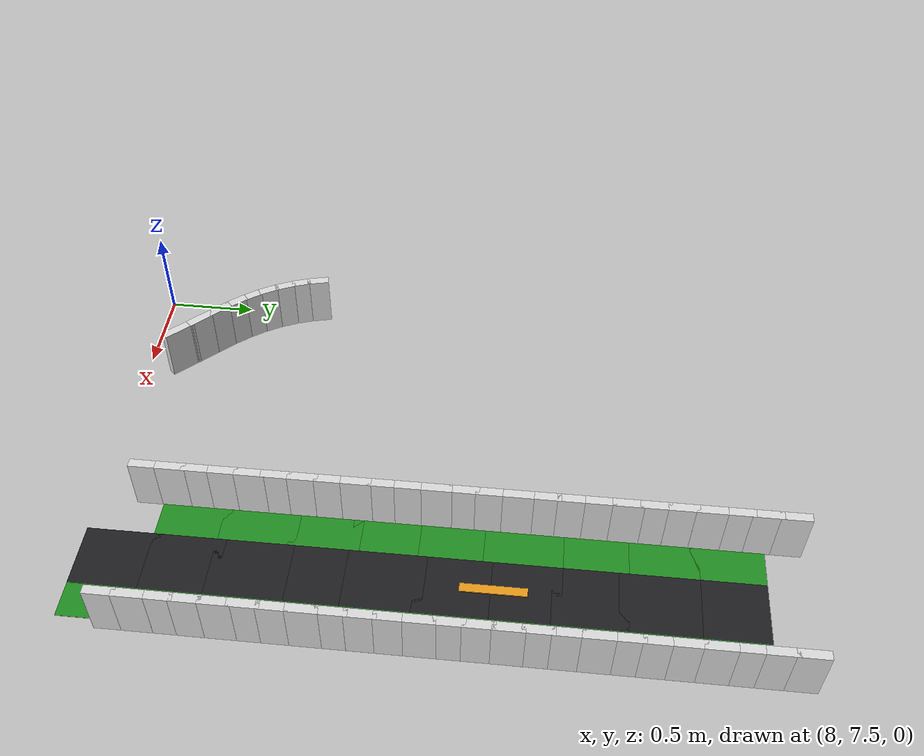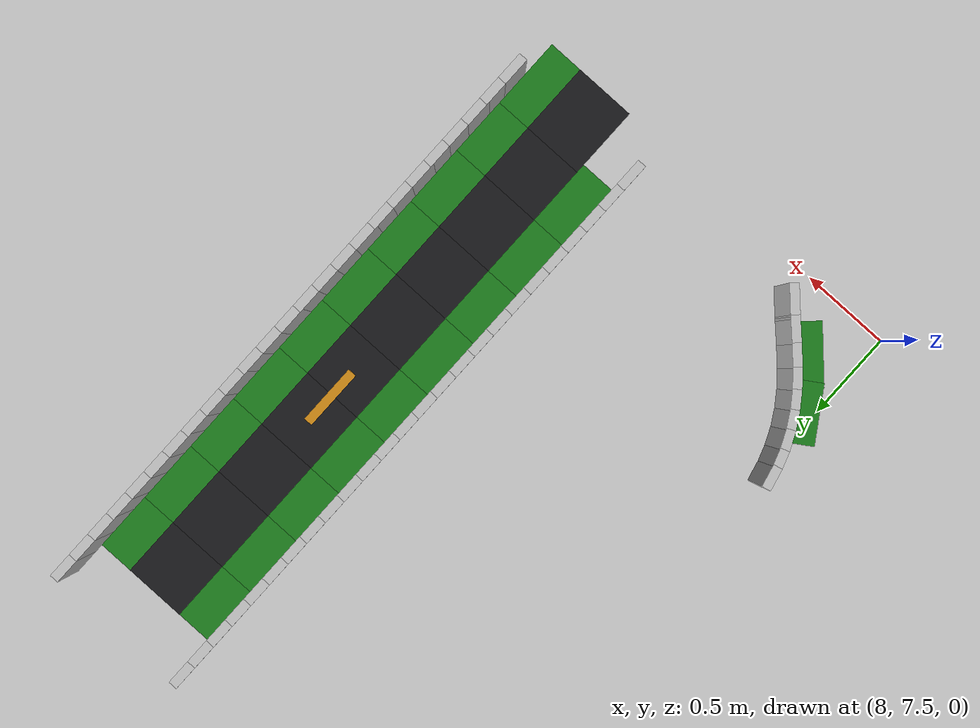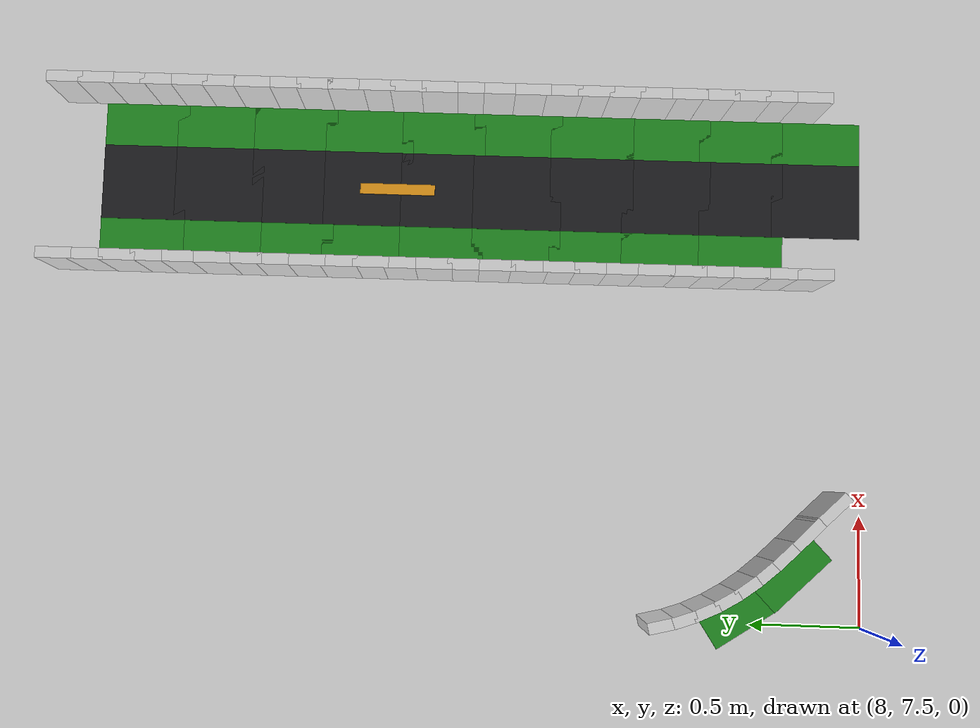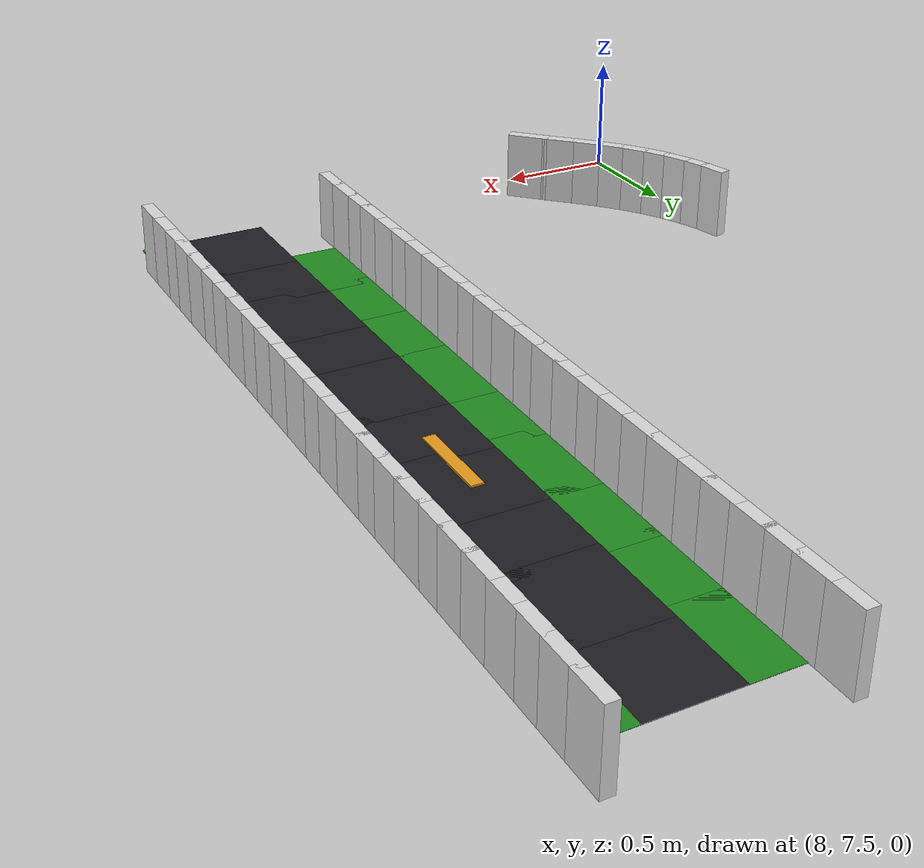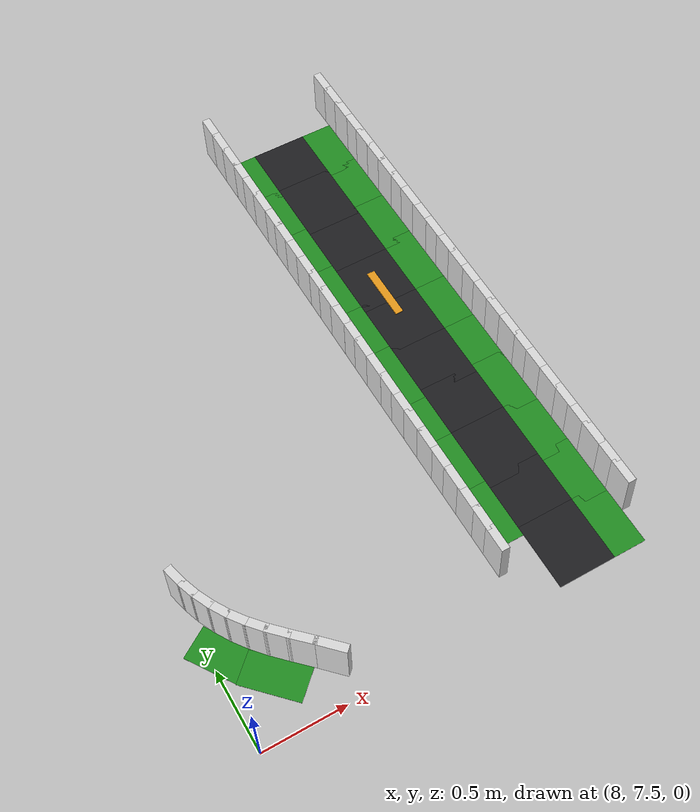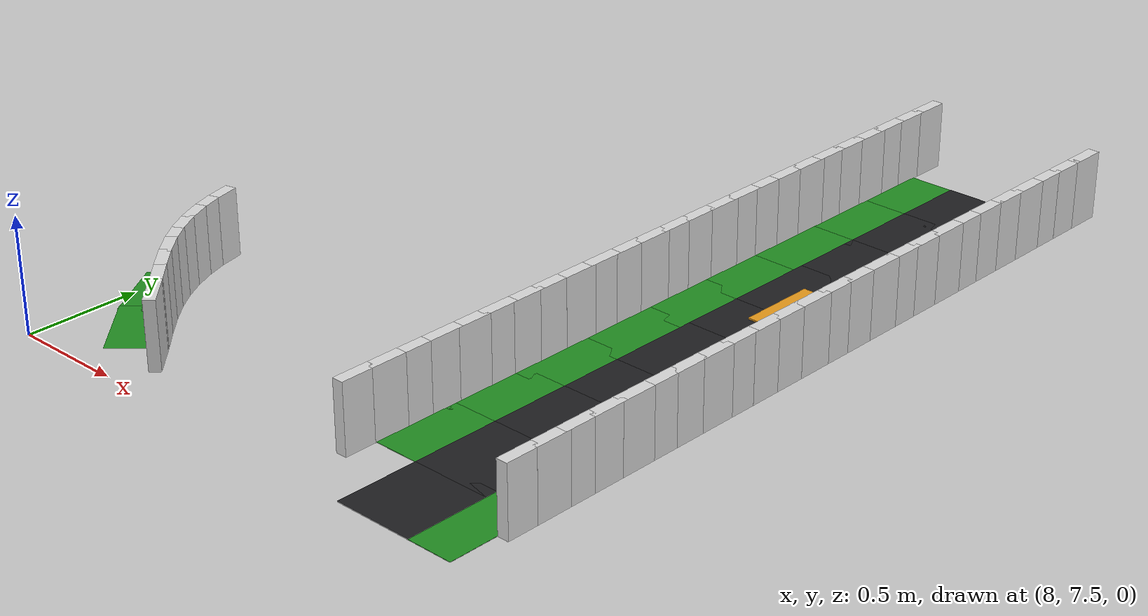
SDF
<sdf version="1.8">
 <world name="it_arena_track">
  <model name="it_arena_track_static">
   <static>true</static>
   <link name="surface_main_3">
    <pose>9.9622 7.7064 0.0015 0 0 1.57396</pose>
    <collision name="surface_main_3_col">
     <geometry><box><size>0.4140 0.3500 0.0030</size></box></geometry>
    </collision>
    <visual name="surface_main_3_vis">
     <geometry><box><size>0.4140 0.3500 0.0030</size></box></geometry>
     <material><ambient>0.12 0.12 0.13 1</ambient><diffuse>0.12 0.12 0.13 1</diffuse></material>
    </visual>
   </link>
   <link name="surface_main_4">
    <pose>9.9611 8.0563 0.0015 0 0 1.57386</pose>
    <collision name="surface_main_4_col">
     <geometry><box><size>0.3910 0.3500 0.0030</size></box></geometry>
    </collision>
    <visual name="surface_main_4_vis">
     <geometry><box><size>0.3910 0.3500 0.0030</size></box></geometry>
     <material><ambient>0.12 0.12 0.13 1</ambient><diffuse>0.12 0.12 0.13 1</diffuse></material>
    </visual>
   </link>
   <link name="surface_main_5">
    <pose>9.9600 8.4063 0.0015 0 0 1.57391</pose>
    <collision name="surface_main_5_col">
     <geometry><box><size>0.4140 0.3500 0.0030</size></box></geometry>
    </collision>
    <visual name="surface_main_5_vis">
     <geometry><box><size>0.4140 0.3500 0.0030</size></box></geometry>
     <material><ambient>0.12 0.12 0.13 1</ambient><diffuse>0.12 0.12 0.13 1</diffuse></material>
    </visual>
   </link>
   <link name="surface_main_6">
    <pose>9.9590 8.7562 0.0015 0 0 1.57374</pose>
    <collision name="surface_main_6_col">
     <geometry><box><size>0.3910 0.3500 0.0030</size></box></geometry>
    </collision>
    <visual name="surface_main_6_vis">
     <geometry><box><size>0.3910 0.3500 0.0030</size></box></geometry>
     <material><ambient>0.12 0.12 0.13 1</ambient><diffuse>0.12 0.12 0.13 1</diffuse></material>
    </visual>
   </link>
   <link name="surface_main_7">
    <pose>9.9579 9.1062 0.0015 0 0 1.57396</pose>
    <collision name="surface_main_7_col">
     <geometry><box><size>0.4140 0.3500 0.0030</size></box></geometry>
    </collision>
    <visual name="surface_main_7_vis">
     <geometry><box><size>0.4140 0.3500 0.0030</size></box></geometry>
     <material><ambient>0.12 0.12 0.13 1</ambient><diffuse>0.12 0.12 0.13 1</diffuse></material>
    </visual>
   </link>
   <link name="surface_main_8">
    <pose>9.9568 9.4562 0.0015 0 0 1.57391</pose>
    <collision name="surface_main_8_col">
     <geometry><box><size>0.3910 0.3500 0.0030</size></box></geometry>
    </collision>
    <visual name="surface_main_8_vis">
     <geometry><box><size>0.3910 0.3500 0.0030</size></box></geometry>
     <material><ambient>0.12 0.12 0.13 1</ambient><diffuse>0.12 0.12 0.13 1</diffuse></material>
    </visual>
   </link>
   <link name="surface_main_9">
    <pose>9.9557 9.8061 0.0015 0 0 1.57385</pose>
    <collision name="surface_main_9_col">
     <geometry><box><size>0.4140 0.3500 0.0030</size></box></geometry>
    </collision>
    <visual name="surface_main_9_vis">
     <geometry><box><size>0.4140 0.3500 0.0030</size></box></geometry>
     <material><ambient>0.12 0.12 0.13 1</ambient><diffuse>0.12 0.12 0.13 1</diffuse></material>
    </visual>
   </link>
   <link name="surface_main_10">
    <pose>9.9546 10.1561 0.0015 0 0 1.57397</pose>
    <collision name="surface_main_10_col">
     <geometry><box><size>0.3910 0.3500 0.0030</size></box></geometry>
    </collision>
    <visual name="surface_main_10_vis">
     <geometry><box><size>0.3910 0.3500 0.0030</size></box></geometry>
     <material><ambient>0.12 0.12 0.13 1</ambient><diffuse>0.12 0.12 0.13 1</diffuse></material>
    </visual>
   </link>
   <link name="surface_main_11">
    <pose>9.9536 10.5060 0.0015 0 0 1.57374</pose>
    <collision name="surface_main_11_col">
     <geometry><box><size>0.4140 0.3500 0.0030</size></box></geometry>
    </collision>
    <visual name="surface_main_11_vis">
     <geometry><box><size>0.4140 0.3500 0.0030</size></box></geometry>
     <material><ambient>0.12 0.12 0.13 1</ambient><diffuse>0.12 0.12 0.13 1</diffuse></material>
    </visual>
   </link>
   <link name="surface_main_12">
    <pose>9.9525 10.8560 0.0015 0 0 1.57391</pose>
    <collision name="surface_main_12_col">
     <geometry><box><size>0.3910 0.3500 0.0030</size></box></geometry>
    </collision>
    <visual name="surface_main_12_vis">
     <geometry><box><size>0.3910 0.3500 0.0030</size></box></geometry>
     <material><ambient>0.12 0.12 0.13 1</ambient><diffuse>0.12 0.12 0.13 1</diffuse></material>
    </visual>
   </link>
   <link name="grass_main_left_4">
    <pose>9.6861 8.0554 0.0010 0 0 1.57386</pose>
    <collision name="grass_main_left_4_col">
     <geometry><box><size>0.3914 0.2000 0.0020</size></box></geometry>
    </collision>
    <visual name="grass_main_left_4_vis">
     <geometry><box><size>0.3914 0.2000 0.0020</size></box></geometry>
     <material><ambient>0.13 0.55 0.13 1</ambient><diffuse>0.13 0.55 0.13 1</diffuse></material>
    </visual>
   </link>
   <link name="grass_main_left_5">
    <pose>9.6850 8.4057 0.0010 0 0 1.57391</pose>
    <collision name="grass_main_left_5_col">
     <geometry><box><size>0.4141 0.2000 0.0020</size></box></geometry>
    </collision>
    <visual name="grass_main_left_5_vis">
     <geometry><box><size>0.4141 0.2000 0.0020</size></box></geometry>
     <material><ambient>0.13 0.55 0.13 1</ambient><diffuse>0.13 0.55 0.13 1</diffuse></material>
    </visual>
   </link>
   <link name="grass_main_left_6">
    <pose>9.6840 8.7555 0.0010 0 0 1.57374</pose>
    <collision name="grass_main_left_6_col">
     <geometry><box><size>0.3905 0.2000 0.0020</size></box></geometry>
    </collision>
    <visual name="grass_main_left_6_vis">
     <geometry><box><size>0.3905 0.2000 0.0020</size></box></geometry>
     <material><ambient>0.13 0.55 0.13 1</ambient><diffuse>0.13 0.55 0.13 1</diffuse></material>
    </visual>
   </link>
   <link name="grass_main_left_7">
    <pose>9.6829 9.1052 0.0010 0 0 1.57396</pose>
    <collision name="grass_main_left_7_col">
     <geometry><box><size>0.4138 0.2000 0.0020</size></box></geometry>
    </collision>
    <visual name="grass_main_left_7_vis">
     <geometry><box><size>0.4138 0.2000 0.0020</size></box></geometry>
     <material><ambient>0.13 0.55 0.13 1</ambient><diffuse>0.13 0.55 0.13 1</diffuse></material>
    </visual>
   </link>
   <link name="grass_main_left_8">
    <pose>9.6818 9.4551 0.0010 0 0 1.57391</pose>
    <collision name="grass_main_left_8_col">
     <geometry><box><size>0.3910 0.2000 0.0020</size></box></geometry>
    </collision>
    <visual name="grass_main_left_8_vis">
     <geometry><box><size>0.3910 0.2000 0.0020</size></box></geometry>
     <material><ambient>0.13 0.55 0.13 1</ambient><diffuse>0.13 0.55 0.13 1</diffuse></material>
    </visual>
   </link>
   <link name="grass_main_left_9">
    <pose>9.6807 9.8053 0.0010 0 0 1.57385</pose>
    <collision name="grass_main_left_9_col">
     <geometry><box><size>0.4146 0.2000 0.0020</size></box></geometry>
    </collision>
    <visual name="grass_main_left_9_vis">
     <geometry><box><size>0.4146 0.2000 0.0020</size></box></geometry>
     <material><ambient>0.13 0.55 0.13 1</ambient><diffuse>0.13 0.55 0.13 1</diffuse></material>
    </visual>
   </link>
   <link name="grass_main_left_10">
    <pose>9.6796 10.1555 0.0010 0 0 1.57397</pose>
    <collision name="grass_main_left_10_col">
     <geometry><box><size>0.3908 0.2000 0.0020</size></box></geometry>
    </collision>
    <visual name="grass_main_left_10_vis">
     <geometry><box><size>0.3908 0.2000 0.0020</size></box></geometry>
     <material><ambient>0.13 0.55 0.13 1</ambient><diffuse>0.13 0.55 0.13 1</diffuse></material>
    </visual>
   </link>
   <link name="grass_main_left_11">
    <pose>9.6786 10.5051 0.0010 0 0 1.57374</pose>
    <collision name="grass_main_left_11_col">
     <geometry><box><size>0.4135 0.2000 0.0020</size></box></geometry>
    </collision>
    <visual name="grass_main_left_11_vis">
     <geometry><box><size>0.4135 0.2000 0.0020</size></box></geometry>
     <material><ambient>0.13 0.55 0.13 1</ambient><diffuse>0.13 0.55 0.13 1</diffuse></material>
    </visual>
   </link>
   <link name="grass_main_left_12">
    <pose>9.6775 10.8550 0.0010 0 0 1.57391</pose>
    <collision name="grass_main_left_12_col">
     <geometry><box><size>0.3911 0.2000 0.0020</size></box></geometry>
    </collision>
    <visual name="grass_main_left_12_vis">
     <geometry><box><size>0.3911 0.2000 0.0020</size></box></geometry>
     <material><ambient>0.13 0.55 0.13 1</ambient><diffuse>0.13 0.55 0.13 1</diffuse></material>
    </visual>
   </link>
   <link name="grass_main_left_39">
    <pose>8.0624 8.0585 0.0010 0 0 -0.99374</pose>
    <collision name="grass_main_left_39_col">
     <geometry><box><size>0.3396 0.2000 0.0020</size></box></geometry>
    </collision>
    <visual name="grass_main_left_39_vis">
     <geometry><box><size>0.3396 0.2000 0.0020</size></box></geometry>
     <material><ambient>0.13 0.55 0.13 1</ambient><diffuse>0.13 0.55 0.13 1</diffuse></material>
    </visual>
   </link>
   <link name="grass_main_left_40">
    <pose>8.2502 7.8223 0.0010 0 0 -0.80899</pose>
    <collision name="grass_main_left_40_col">
     <geometry><box><size>0.3572 0.2000 0.0020</size></box></geometry>
    </collision>
    <visual name="grass_main_left_40_vis">
     <geometry><box><size>0.3572 0.2000 0.0020</size></box></geometry>
     <material><ambient>0.13 0.55 0.13 1</ambient><diffuse>0.13 0.55 0.13 1</diffuse></material>
    </visual>
   </link>
   <link name="grass_main_right_3">
    <pose>10.2372 7.7074 0.0010 0 0 1.57396</pose>
    <collision name="grass_main_right_3_col">
     <geometry><box><size>0.4141 0.2000 0.0020</size></box></geometry>
    </collision>
    <visual name="grass_main_right_3_vis">
     <geometry><box><size>0.4141 0.2000 0.0020</size></box></geometry>
     <material><ambient>0.13 0.55 0.13 1</ambient><diffuse>0.13 0.55 0.13 1</diffuse></material>
    </visual>
   </link>
   <link name="grass_main_right_4">
    <pose>10.2361 8.0572 0.0010 0 0 1.57386</pose>
    <collision name="grass_main_right_4_col">
     <geometry><box><size>0.3905 0.2000 0.0020</size></box></geometry>
    </collision>
    <visual name="grass_main_right_4_vis">
     <geometry><box><size>0.3905 0.2000 0.0020</size></box></geometry>
     <material><ambient>0.13 0.55 0.13 1</ambient><diffuse>0.13 0.55 0.13 1</diffuse></material>
    </visual>
   </link>
   <link name="grass_main_right_5">
    <pose>10.2350 8.4069 0.0010 0 0 1.57391</pose>
    <collision name="grass_main_right_5_col">
     <geometry><box><size>0.4138 0.2000 0.0020</size></box></geometry>
    </collision>
    <visual name="grass_main_right_5_vis">
     <geometry><box><size>0.4138 0.2000 0.0020</size></box></geometry>
     <material><ambient>0.13 0.55 0.13 1</ambient><diffuse>0.13 0.55 0.13 1</diffuse></material>
    </visual>
   </link>
   <link name="grass_main_right_6">
    <pose>10.2340 8.7570 0.0010 0 0 1.57374</pose>
    <collision name="grass_main_right_6_col">
     <geometry><box><size>0.3914 0.2000 0.0020</size></box></geometry>
    </collision>
    <visual name="grass_main_right_6_vis">
     <geometry><box><size>0.3914 0.2000 0.0020</size></box></geometry>
     <material><ambient>0.13 0.55 0.13 1</ambient><diffuse>0.13 0.55 0.13 1</diffuse></material>
    </visual>
   </link>
   <link name="grass_main_right_7">
    <pose>10.2329 9.1072 0.0010 0 0 1.57396</pose>
    <collision name="grass_main_right_7_col">
     <geometry><box><size>0.4141 0.2000 0.0020</size></box></geometry>
    </collision>
    <visual name="grass_main_right_7_vis">
     <geometry><box><size>0.4141 0.2000 0.0020</size></box></geometry>
     <material><ambient>0.13 0.55 0.13 1</ambient><diffuse>0.13 0.55 0.13 1</diffuse></material>
    </visual>
   </link>
   <link name="grass_main_right_8">
    <pose>10.2318 9.4573 0.0010 0 0 1.57391</pose>
    <collision name="grass_main_right_8_col">
     <geometry><box><size>0.3910 0.2000 0.0020</size></box></geometry>
    </collision>
    <visual name="grass_main_right_8_vis">
     <geometry><box><size>0.3910 0.2000 0.0020</size></box></geometry>
     <material><ambient>0.13 0.55 0.13 1</ambient><diffuse>0.13 0.55 0.13 1</diffuse></material>
    </visual>
   </link>
   <link name="grass_main_right_9">
    <pose>10.2307 9.8069 0.0010 0 0 1.57385</pose>
    <collision name="grass_main_right_9_col">
     <geometry><box><size>0.4133 0.2000 0.0020</size></box></geometry>
    </collision>
    <visual name="grass_main_right_9_vis">
     <geometry><box><size>0.4133 0.2000 0.0020</size></box></geometry>
     <material><ambient>0.13 0.55 0.13 1</ambient><diffuse>0.13 0.55 0.13 1</diffuse></material>
    </visual>
   </link>
   <link name="grass_main_right_10">
    <pose>10.2296 10.1567 0.0010 0 0 1.57397</pose>
    <collision name="grass_main_right_10_col">
     <geometry><box><size>0.3911 0.2000 0.0020</size></box></geometry>
    </collision>
    <visual name="grass_main_right_10_vis">
     <geometry><box><size>0.3911 0.2000 0.0020</size></box></geometry>
     <material><ambient>0.13 0.55 0.13 1</ambient><diffuse>0.13 0.55 0.13 1</diffuse></material>
    </visual>
   </link>
   <link name="grass_main_right_11">
    <pose>10.2285 10.5069 0.0010 0 0 1.57374</pose>
    <collision name="grass_main_right_11_col">
     <geometry><box><size>0.4144 0.2000 0.0020</size></box></geometry>
    </collision>
    <visual name="grass_main_right_11_vis">
     <geometry><box><size>0.4144 0.2000 0.0020</size></box></geometry>
     <material><ambient>0.13 0.55 0.13 1</ambient><diffuse>0.13 0.55 0.13 1</diffuse></material>
    </visual>
   </link>
   <link name="grass_main_right_12">
    <pose>10.2275 10.8570 0.0010 0 0 1.57391</pose>
    <collision name="grass_main_right_12_col">
     <geometry><box><size>0.3908 0.2000 0.0020</size></box></geometry>
    </collision>
    <visual name="grass_main_right_12_vis">
     <geometry><box><size>0.3908 0.2000 0.0020</size></box></geometry>
     <material><ambient>0.13 0.55 0.13 1</ambient><diffuse>0.13 0.55 0.13 1</diffuse></material>
    </visual>
   </link>
   <link name="walls_main_left_9">
    <pose>9.5619 7.7951 0.1500 0 0 1.57408</pose>
    <collision name="walls_main_left_9_col">
     <geometry><box><size>0.1612 0.0500 0.3000</size></box></geometry>
     <surface><friction><ode><mu>0.8</mu><mu2>0.8</mu2></ode></friction></surface>
    </collision>
    <visual name="walls_main_left_9_vis">
     <geometry><box><size>0.1612 0.0500 0.3000</size></box></geometry>
     <material><ambient>0.85 0.85 0.85 1</ambient><diffuse>0.85 0.85 0.85 1</diffuse></material>
    </visual>
   </link>
   <link name="walls_main_left_10">
    <pose>9.5615 7.9350 0.1500 0 0 1.57408</pose>
    <collision name="walls_main_left_10_col">
     <geometry><box><size>0.1607 0.0500 0.3000</size></box></geometry>
     <surface><friction><ode><mu>0.8</mu><mu2>0.8</mu2></ode></friction></surface>
    </collision>
    <visual name="walls_main_left_10_vis">
     <geometry><box><size>0.1607 0.0500 0.3000</size></box></geometry>
     <material><ambient>0.85 0.85 0.85 1</ambient><diffuse>0.85 0.85 0.85 1</diffuse></material>
    </visual>
   </link>
   <link name="walls_main_left_11">
    <pose>9.5610 8.0752 0.1500 0 0 1.57366</pose>
    <collision name="walls_main_left_11_col">
     <geometry><box><size>0.1617 0.0500 0.3000</size></box></geometry>
     <surface><friction><ode><mu>0.8</mu><mu2>0.8</mu2></ode></friction></surface>
    </collision>
    <visual name="walls_main_left_11_vis">
     <geometry><box><size>0.1617 0.0500 0.3000</size></box></geometry>
     <material><ambient>0.85 0.85 0.85 1</ambient><diffuse>0.85 0.85 0.85 1</diffuse></material>
    </visual>
   </link>
   <link name="walls_main_left_12">
    <pose>9.5606 8.2151 0.1500 0 0 1.57379</pose>
    <collision name="walls_main_left_12_col">
     <geometry><box><size>0.1601 0.0500 0.3000</size></box></geometry>
     <surface><friction><ode><mu>0.8</mu><mu2>0.8</mu2></ode></friction></surface>
    </collision>
    <visual name="walls_main_left_12_vis">
     <geometry><box><size>0.1601 0.0500 0.3000</size></box></geometry>
     <material><ambient>0.85 0.85 0.85 1</ambient><diffuse>0.85 0.85 0.85 1</diffuse></material>
    </visual>
   </link>
   <link name="walls_main_left_13">
    <pose>9.5602 8.3548 0.1500 0 0 1.57408</pose>
    <collision name="walls_main_left_13_col">
     <geometry><box><size>0.1612 0.0500 0.3000</size></box></geometry>
     <surface><friction><ode><mu>0.8</mu><mu2>0.8</mu2></ode></friction></surface>
    </collision>
    <visual name="walls_main_left_13_vis">
     <geometry><box><size>0.1612 0.0500 0.3000</size></box></geometry>
     <material><ambient>0.85 0.85 0.85 1</ambient><diffuse>0.85 0.85 0.85 1</diffuse></material>
    </visual>
   </link>
   <link name="walls_main_left_14">
    <pose>9.5597 8.4950 0.1500 0 0 1.57408</pose>
    <collision name="walls_main_left_14_col">
     <geometry><box><size>0.1612 0.0500 0.3000</size></box></geometry>
     <surface><friction><ode><mu>0.8</mu><mu2>0.8</mu2></ode></friction></surface>
    </collision>
    <visual name="walls_main_left_14_vis">
     <geometry><box><size>0.1612 0.0500 0.3000</size></box></geometry>
     <material><ambient>0.85 0.85 0.85 1</ambient><diffuse>0.85 0.85 0.85 1</diffuse></material>
    </visual>
   </link>
   <link name="walls_main_left_15">
    <pose>9.5593 8.6352 0.1500 0 0 1.57351</pose>
    <collision name="walls_main_left_15_col">
     <geometry><box><size>0.1612 0.0500 0.3000</size></box></geometry>
     <surface><friction><ode><mu>0.8</mu><mu2>0.8</mu2></ode></friction></surface>
    </collision>
    <visual name="walls_main_left_15_vis">
     <geometry><box><size>0.1612 0.0500 0.3000</size></box></geometry>
     <material><ambient>0.85 0.85 0.85 1</ambient><diffuse>0.85 0.85 0.85 1</diffuse></material>
    </visual>
   </link>
   <link name="walls_main_left_16">
    <pose>9.5589 8.7749 0.1500 0 0 1.57393</pose>
    <collision name="walls_main_left_16_col">
     <geometry><box><size>0.1603 0.0500 0.3000</size></box></geometry>
     <surface><friction><ode><mu>0.8</mu><mu2>0.8</mu2></ode></friction></surface>
    </collision>
    <visual name="walls_main_left_16_vis">
     <geometry><box><size>0.1603 0.0500 0.3000</size></box></geometry>
     <material><ambient>0.85 0.85 0.85 1</ambient><diffuse>0.85 0.85 0.85 1</diffuse></material>
    </visual>
   </link>
   <link name="walls_main_left_17">
    <pose>9.5585 8.9146 0.1500 0 0 1.57408</pose>
    <collision name="walls_main_left_17_col">
     <geometry><box><size>0.1610 0.0500 0.3000</size></box></geometry>
     <surface><friction><ode><mu>0.8</mu><mu2>0.8</mu2></ode></friction></surface>
    </collision>
    <visual name="walls_main_left_17_vis">
     <geometry><box><size>0.1610 0.0500 0.3000</size></box></geometry>
     <material><ambient>0.85 0.85 0.85 1</ambient><diffuse>0.85 0.85 0.85 1</diffuse></material>
    </visual>
   </link>
   <link name="walls_main_left_18">
    <pose>9.5580 9.0549 0.1500 0 0 1.57394</pose>
    <collision name="walls_main_left_18_col">
     <geometry><box><size>0.1617 0.0500 0.3000</size></box></geometry>
     <surface><friction><ode><mu>0.8</mu><mu2>0.8</mu2></ode></friction></surface>
    </collision>
    <visual name="walls_main_left_18_vis">
     <geometry><box><size>0.1617 0.0500 0.3000</size></box></geometry>
     <material><ambient>0.85 0.85 0.85 1</ambient><diffuse>0.85 0.85 0.85 1</diffuse></material>
    </visual>
   </link>
   <link name="walls_main_left_19">
    <pose>9.5576 9.1951 0.1500 0 0 1.57351</pose>
    <collision name="walls_main_left_19_col">
     <geometry><box><size>0.1608 0.0500 0.3000</size></box></geometry>
     <surface><friction><ode><mu>0.8</mu><mu2>0.8</mu2></ode></friction></surface>
    </collision>
    <visual name="walls_main_left_19_vis">
     <geometry><box><size>0.1608 0.0500 0.3000</size></box></geometry>
     <material><ambient>0.85 0.85 0.85 1</ambient><diffuse>0.85 0.85 0.85 1</diffuse></material>
    </visual>
   </link>
   <link name="walls_main_left_20">
    <pose>9.5572 9.3349 0.1500 0 0 1.57408</pose>
    <collision name="walls_main_left_20_col">
     <geometry><box><size>0.1607 0.0500 0.3000</size></box></geometry>
     <surface><friction><ode><mu>0.8</mu><mu2>0.8</mu2></ode></friction></surface>
    </collision>
    <visual name="walls_main_left_20_vis">
     <geometry><box><size>0.1607 0.0500 0.3000</size></box></geometry>
     <material><ambient>0.85 0.85 0.85 1</ambient><diffuse>0.85 0.85 0.85 1</diffuse></material>
    </visual>
   </link>
   <link name="walls_main_left_21">
    <pose>9.5567 9.4751 0.1500 0 0 1.57366</pose>
    <collision name="walls_main_left_21_col">
     <geometry><box><size>0.1617 0.0500 0.3000</size></box></geometry>
     <surface><friction><ode><mu>0.8</mu><mu2>0.8</mu2></ode></friction></surface>
    </collision>
    <visual name="walls_main_left_21_vis">
     <geometry><box><size>0.1617 0.0500 0.3000</size></box></geometry>
     <material><ambient>0.85 0.85 0.85 1</ambient><diffuse>0.85 0.85 0.85 1</diffuse></material>
    </visual>
   </link>
   <link name="walls_main_left_22">
    <pose>9.5563 9.6153 0.1500 0 0 1.57423</pose>
    <collision name="walls_main_left_22_col">
     <geometry><box><size>0.1610 0.0500 0.3000</size></box></geometry>
     <surface><friction><ode><mu>0.8</mu><mu2>0.8</mu2></ode></friction></surface>
    </collision>
    <visual name="walls_main_left_22_vis">
     <geometry><box><size>0.1610 0.0500 0.3000</size></box></geometry>
     <material><ambient>0.85 0.85 0.85 1</ambient><diffuse>0.85 0.85 0.85 1</diffuse></material>
    </visual>
   </link>
   <link name="walls_main_left_23">
    <pose>9.5559 9.7550 0.1500 0 0 1.57365</pose>
    <collision name="walls_main_left_23_col">
     <geometry><box><size>0.1603 0.0500 0.3000</size></box></geometry>
     <surface><friction><ode><mu>0.8</mu><mu2>0.8</mu2></ode></friction></surface>
    </collision>
    <visual name="walls_main_left_23_vis">
     <geometry><box><size>0.1603 0.0500 0.3000</size></box></geometry>
     <material><ambient>0.85 0.85 0.85 1</ambient><diffuse>0.85 0.85 0.85 1</diffuse></material>
    </visual>
   </link>
   <link name="walls_main_left_24">
    <pose>9.5554 9.8948 0.1500 0 0 1.57408</pose>
    <collision name="walls_main_left_24_col">
     <geometry><box><size>0.1612 0.0500 0.3000</size></box></geometry>
     <surface><friction><ode><mu>0.8</mu><mu2>0.8</mu2></ode></friction></surface>
    </collision>
    <visual name="walls_main_left_24_vis">
     <geometry><box><size>0.1612 0.0500 0.3000</size></box></geometry>
     <material><ambient>0.85 0.85 0.85 1</ambient><diffuse>0.85 0.85 0.85 1</diffuse></material>
    </visual>
   </link>
   <link name="walls_main_left_25">
    <pose>9.5550 10.0350 0.1500 0 0 1.57352</pose>
    <collision name="walls_main_left_25_col">
     <geometry><box><size>0.1612 0.0500 0.3000</size></box></geometry>
     <surface><friction><ode><mu>0.8</mu><mu2>0.8</mu2></ode></friction></surface>
    </collision>
    <visual name="walls_main_left_25_vis">
     <geometry><box><size>0.1612 0.0500 0.3000</size></box></geometry>
     <material><ambient>0.85 0.85 0.85 1</ambient><diffuse>0.85 0.85 0.85 1</diffuse></material>
    </visual>
   </link>
   <link name="walls_main_left_26">
    <pose>9.5546 10.1748 0.1500 0 0 1.57393</pose>
    <collision name="walls_main_left_26_col">
     <geometry><box><size>0.1603 0.0500 0.3000</size></box></geometry>
     <surface><friction><ode><mu>0.8</mu><mu2>0.8</mu2></ode></friction></surface>
    </collision>
    <visual name="walls_main_left_26_vis">
     <geometry><box><size>0.1603 0.0500 0.3000</size></box></geometry>
     <material><ambient>0.85 0.85 0.85 1</ambient><diffuse>0.85 0.85 0.85 1</diffuse></material>
    </visual>
   </link>
   <link name="walls_main_left_27">
    <pose>9.5542 10.3145 0.1500 0 0 1.57408</pose>
    <collision name="walls_main_left_27_col">
     <geometry><box><size>0.1610 0.0500 0.3000</size></box></geometry>
     <surface><friction><ode><mu>0.8</mu><mu2>0.8</mu2></ode></friction></surface>
    </collision>
    <visual name="walls_main_left_27_vis">
     <geometry><box><size>0.1610 0.0500 0.3000</size></box></geometry>
     <material><ambient>0.85 0.85 0.85 1</ambient><diffuse>0.85 0.85 0.85 1</diffuse></material>
    </visual>
   </link>
   <link name="walls_main_left_28">
    <pose>9.5537 10.4547 0.1500 0 0 1.57395</pose>
    <collision name="walls_main_left_28_col">
     <geometry><box><size>0.1617 0.0500 0.3000</size></box></geometry>
     <surface><friction><ode><mu>0.8</mu><mu2>0.8</mu2></ode></friction></surface>
    </collision>
    <visual name="walls_main_left_28_vis">
     <geometry><box><size>0.1617 0.0500 0.3000</size></box></geometry>
     <material><ambient>0.85 0.85 0.85 1</ambient><diffuse>0.85 0.85 0.85 1</diffuse></material>
    </visual>
   </link>
   <link name="walls_main_left_29">
    <pose>9.5533 10.5949 0.1500 0 0 1.57351</pose>
    <collision name="walls_main_left_29_col">
     <geometry><box><size>0.1608 0.0500 0.3000</size></box></geometry>
     <surface><friction><ode><mu>0.8</mu><mu2>0.8</mu2></ode></friction></surface>
    </collision>
    <visual name="walls_main_left_29_vis">
     <geometry><box><size>0.1608 0.0500 0.3000</size></box></geometry>
     <material><ambient>0.85 0.85 0.85 1</ambient><diffuse>0.85 0.85 0.85 1</diffuse></material>
    </visual>
   </link>
   <link name="walls_main_left_30">
    <pose>9.5529 10.7347 0.1500 0 0 1.57408</pose>
    <collision name="walls_main_left_30_col">
     <geometry><box><size>0.1607 0.0500 0.3000</size></box></geometry>
     <surface><friction><ode><mu>0.8</mu><mu2>0.8</mu2></ode></friction></surface>
    </collision>
    <visual name="walls_main_left_30_vis">
     <geometry><box><size>0.1607 0.0500 0.3000</size></box></geometry>
     <material><ambient>0.85 0.85 0.85 1</ambient><diffuse>0.85 0.85 0.85 1</diffuse></material>
    </visual>
   </link>
   <link name="walls_main_left_31">
    <pose>9.5524 10.8745 0.1500 0 0 1.57408</pose>
    <collision name="walls_main_left_31_col">
     <geometry><box><size>0.1608 0.0500 0.3000</size></box></geometry>
     <surface><friction><ode><mu>0.8</mu><mu2>0.8</mu2></ode></friction></surface>
    </collision>
    <visual name="walls_main_left_31_vis">
     <geometry><box><size>0.1608 0.0500 0.3000</size></box></geometry>
     <material><ambient>0.85 0.85 0.85 1</ambient><diffuse>0.85 0.85 0.85 1</diffuse></material>
    </visual>
   </link>
   <link name="walls_main_left_32">
    <pose>9.5520 11.0148 0.1500 0 0 1.57380</pose>
    <collision name="walls_main_left_32_col">
     <geometry><box><size>0.1619 0.0500 0.3000</size></box></geometry>
     <surface><friction><ode><mu>0.8</mu><mu2>0.8</mu2></ode></friction></surface>
    </collision>
    <visual name="walls_main_left_32_vis">
     <geometry><box><size>0.1619 0.0500 0.3000</size></box></geometry>
     <material><ambient>0.85 0.85 0.85 1</ambient><diffuse>0.85 0.85 0.85 1</diffuse></material>
    </visual>
   </link>
   <link name="walls_main_left_33">
    <pose>9.5516 11.1549 0.1500 0 0 1.57365</pose>
    <collision name="walls_main_left_33_col">
     <geometry><box><size>0.1603 0.0500 0.3000</size></box></geometry>
     <surface><friction><ode><mu>0.8</mu><mu2>0.8</mu2></ode></friction></surface>
    </collision>
    <visual name="walls_main_left_33_vis">
     <geometry><box><size>0.1603 0.0500 0.3000</size></box></geometry>
     <material><ambient>0.85 0.85 0.85 1</ambient><diffuse>0.85 0.85 0.85 1</diffuse></material>
    </visual>
   </link>
   <link name="walls_main_left_95">
    <pose>8.0208 8.4459 0.1500 0 0 -1.33142</pose>
    <collision name="walls_main_left_95_col">
     <geometry><box><size>0.1251 0.0500 0.3000</size></box></geometry>
     <surface><friction><ode><mu>0.8</mu><mu2>0.8</mu2></ode></friction></surface>
    </collision>
    <visual name="walls_main_left_95_vis">
     <geometry><box><size>0.1251 0.0500 0.3000</size></box></geometry>
     <material><ambient>0.85 0.85 0.85 1</ambient><diffuse>0.85 0.85 0.85 1</diffuse></material>
    </visual>
   </link>
   <link name="walls_main_left_96">
    <pose>8.0491 8.3489 0.1500 0 0 -1.23540</pose>
    <collision name="walls_main_left_96_col">
     <geometry><box><size>0.1075 0.0500 0.3000</size></box></geometry>
     <surface><friction><ode><mu>0.8</mu><mu2>0.8</mu2></ode></friction></surface>
    </collision>
    <visual name="walls_main_left_96_vis">
     <geometry><box><size>0.1075 0.0500 0.3000</size></box></geometry>
     <material><ambient>0.85 0.85 0.85 1</ambient><diffuse>0.85 0.85 0.85 1</diffuse></material>
    </visual>
   </link>
   <link name="walls_main_left_97">
    <pose>8.0864 8.2570 0.1500 0 0 -1.14104</pose>
    <collision name="walls_main_left_97_col">
     <geometry><box><size>0.1209 0.0500 0.3000</size></box></geometry>
     <surface><friction><ode><mu>0.8</mu><mu2>0.8</mu2></ode></friction></surface>
    </collision>
    <visual name="walls_main_left_97_vis">
     <geometry><box><size>0.1209 0.0500 0.3000</size></box></geometry>
     <material><ambient>0.85 0.85 0.85 1</ambient><diffuse>0.85 0.85 0.85 1</diffuse></material>
    </visual>
   </link>
   <link name="walls_main_left_98">
    <pose>8.1340 8.1653 0.1500 0 0 -1.04070</pose>
    <collision name="walls_main_left_98_col">
     <geometry><box><size>0.1172 0.0500 0.3000</size></box></geometry>
     <surface><friction><ode><mu>0.8</mu><mu2>0.8</mu2></ode></friction></surface>
    </collision>
    <visual name="walls_main_left_98_vis">
     <geometry><box><size>0.1172 0.0500 0.3000</size></box></geometry>
     <material><ambient>0.85 0.85 0.85 1</ambient><diffuse>0.85 0.85 0.85 1</diffuse></material>
    </visual>
   </link>
   <link name="walls_main_left_99">
    <pose>8.1900 8.0796 0.1500 0 0 -0.94449</pose>
    <collision name="walls_main_left_99_col">
     <geometry><box><size>0.1184 0.0500 0.3000</size></box></geometry>
     <surface><friction><ode><mu>0.8</mu><mu2>0.8</mu2></ode></friction></surface>
    </collision>
    <visual name="walls_main_left_99_vis">
     <geometry><box><size>0.1184 0.0500 0.3000</size></box></geometry>
     <material><ambient>0.85 0.85 0.85 1</ambient><diffuse>0.85 0.85 0.85 1</diffuse></material>
    </visual>
   </link>
   <link name="walls_main_left_100">
    <pose>8.2564 7.9958 0.1500 0 0 -0.86036</pose>
    <collision name="walls_main_left_100_col">
     <geometry><box><size>0.1278 0.0500 0.3000</size></box></geometry>
     <surface><friction><ode><mu>0.8</mu><mu2>0.8</mu2></ode></friction></surface>
    </collision>
    <visual name="walls_main_left_100_vis">
     <geometry><box><size>0.1278 0.0500 0.3000</size></box></geometry>
     <material><ambient>0.85 0.85 0.85 1</ambient><diffuse>0.85 0.85 0.85 1</diffuse></material>
    </visual>
   </link>
   <link name="walls_main_left_101">
    <pose>8.3347 7.9101 0.1500 0 0 -0.80291</pose>
    <collision name="walls_main_left_101_col">
     <geometry><box><size>0.1395 0.0500 0.3000</size></box></geometry>
     <surface><friction><ode><mu>0.8</mu><mu2>0.8</mu2></ode></friction></surface>
    </collision>
    <visual name="walls_main_left_101_vis">
     <geometry><box><size>0.1395 0.0500 0.3000</size></box></geometry>
     <material><ambient>0.85 0.85 0.85 1</ambient><diffuse>0.85 0.85 0.85 1</diffuse></material>
    </visual>
   </link>
   <link name="walls_main_left_102">
    <pose>8.4262 7.8177 0.1500 0 0 -0.77892</pose>
    <collision name="walls_main_left_102_col">
     <geometry><box><size>0.1595 0.0500 0.3000</size></box></geometry>
     <surface><friction><ode><mu>0.8</mu><mu2>0.8</mu2></ode></friction></surface>
    </collision>
    <visual name="walls_main_left_102_vis">
     <geometry><box><size>0.1595 0.0500 0.3000</size></box></geometry>
     <material><ambient>0.85 0.85 0.85 1</ambient><diffuse>0.85 0.85 0.85 1</diffuse></material>
    </visual>
   </link>
   <link name="walls_main_left_103">
    <pose>8.5312 7.7116 0.1500 0 0 -0.80112</pose>
    <collision name="walls_main_left_103_col">
     <geometry><box><size>0.1839 0.0500 0.3000</size></box></geometry>
     <surface><friction><ode><mu>0.8</mu><mu2>0.8</mu2></ode></friction></surface>
    </collision>
    <visual name="walls_main_left_103_vis">
     <geometry><box><size>0.1839 0.0500 0.3000</size></box></geometry>
     <material><ambient>0.85 0.85 0.85 1</ambient><diffuse>0.85 0.85 0.85 1</diffuse></material>
    </visual>
   </link>
   <link name="walls_main_right_9">
    <pose>10.3619 7.7976 0.1500 0 0 1.57408</pose>
    <collision name="walls_main_right_9_col">
     <geometry><box><size>0.1608 0.0500 0.3000</size></box></geometry>
     <surface><friction><ode><mu>0.8</mu><mu2>0.8</mu2></ode></friction></surface>
    </collision>
    <visual name="walls_main_right_9_vis">
     <geometry><box><size>0.1608 0.0500 0.3000</size></box></geometry>
     <material><ambient>0.85 0.85 0.85 1</ambient><diffuse>0.85 0.85 0.85 1</diffuse></material>
    </visual>
   </link>
   <link name="walls_main_right_10">
    <pose>10.3615 7.9376 0.1500 0 0 1.57408</pose>
    <collision name="walls_main_right_10_col">
     <geometry><box><size>0.1612 0.0500 0.3000</size></box></geometry>
     <surface><friction><ode><mu>0.8</mu><mu2>0.8</mu2></ode></friction></surface>
    </collision>
    <visual name="walls_main_right_10_vis">
     <geometry><box><size>0.1612 0.0500 0.3000</size></box></geometry>
     <material><ambient>0.85 0.85 0.85 1</ambient><diffuse>0.85 0.85 0.85 1</diffuse></material>
    </visual>
   </link>
   <link name="walls_main_right_11">
    <pose>10.3610 8.0774 0.1500 0 0 1.57366</pose>
    <collision name="walls_main_right_11_col">
     <geometry><box><size>0.1603 0.0500 0.3000</size></box></geometry>
     <surface><friction><ode><mu>0.8</mu><mu2>0.8</mu2></ode></friction></surface>
    </collision>
    <visual name="walls_main_right_11_vis">
     <geometry><box><size>0.1603 0.0500 0.3000</size></box></geometry>
     <material><ambient>0.85 0.85 0.85 1</ambient><diffuse>0.85 0.85 0.85 1</diffuse></material>
    </visual>
   </link>
   <link name="walls_main_right_12">
    <pose>10.3606 8.2175 0.1500 0 0 1.57379</pose>
    <collision name="walls_main_right_12_col">
     <geometry><box><size>0.1619 0.0500 0.3000</size></box></geometry>
     <surface><friction><ode><mu>0.8</mu><mu2>0.8</mu2></ode></friction></surface>
    </collision>
    <visual name="walls_main_right_12_vis">
     <geometry><box><size>0.1619 0.0500 0.3000</size></box></geometry>
     <material><ambient>0.85 0.85 0.85 1</ambient><diffuse>0.85 0.85 0.85 1</diffuse></material>
    </visual>
   </link>
   <link name="walls_main_right_13">
    <pose>10.3602 8.3578 0.1500 0 0 1.57408</pose>
    <collision name="walls_main_right_13_col">
     <geometry><box><size>0.1608 0.0500 0.3000</size></box></geometry>
     <surface><friction><ode><mu>0.8</mu><mu2>0.8</mu2></ode></friction></surface>
    </collision>
    <visual name="walls_main_right_13_vis">
     <geometry><box><size>0.1608 0.0500 0.3000</size></box></geometry>
     <material><ambient>0.85 0.85 0.85 1</ambient><diffuse>0.85 0.85 0.85 1</diffuse></material>
    </visual>
   </link>
   <link name="walls_main_right_14">
    <pose>10.3597 8.4976 0.1500 0 0 1.57408</pose>
    <collision name="walls_main_right_14_col">
     <geometry><box><size>0.1608 0.0500 0.3000</size></box></geometry>
     <surface><friction><ode><mu>0.8</mu><mu2>0.8</mu2></ode></friction></surface>
    </collision>
    <visual name="walls_main_right_14_vis">
     <geometry><box><size>0.1608 0.0500 0.3000</size></box></geometry>
     <material><ambient>0.85 0.85 0.85 1</ambient><diffuse>0.85 0.85 0.85 1</diffuse></material>
    </visual>
   </link>
   <link name="walls_main_right_15">
    <pose>10.3593 8.6374 0.1500 0 0 1.57351</pose>
    <collision name="walls_main_right_15_col">
     <geometry><box><size>0.1607 0.0500 0.3000</size></box></geometry>
     <surface><friction><ode><mu>0.8</mu><mu2>0.8</mu2></ode></friction></surface>
    </collision>
    <visual name="walls_main_right_15_vis">
     <geometry><box><size>0.1607 0.0500 0.3000</size></box></geometry>
     <material><ambient>0.85 0.85 0.85 1</ambient><diffuse>0.85 0.85 0.85 1</diffuse></material>
    </visual>
   </link>
   <link name="walls_main_right_16">
    <pose>10.3589 8.7775 0.1500 0 0 1.57394</pose>
    <collision name="walls_main_right_16_col">
     <geometry><box><size>0.1617 0.0500 0.3000</size></box></geometry>
     <surface><friction><ode><mu>0.8</mu><mu2>0.8</mu2></ode></friction></surface>
    </collision>
    <visual name="walls_main_right_16_vis">
     <geometry><box><size>0.1617 0.0500 0.3000</size></box></geometry>
     <material><ambient>0.85 0.85 0.85 1</ambient><diffuse>0.85 0.85 0.85 1</diffuse></material>
    </visual>
   </link>
   <link name="walls_main_right_17">
    <pose>10.3584 8.9178 0.1500 0 0 1.57408</pose>
    <collision name="walls_main_right_17_col">
     <geometry><box><size>0.1610 0.0500 0.3000</size></box></geometry>
     <surface><friction><ode><mu>0.8</mu><mu2>0.8</mu2></ode></friction></surface>
    </collision>
    <visual name="walls_main_right_17_vis">
     <geometry><box><size>0.1610 0.0500 0.3000</size></box></geometry>
     <material><ambient>0.85 0.85 0.85 1</ambient><diffuse>0.85 0.85 0.85 1</diffuse></material>
    </visual>
   </link>
   <link name="walls_main_right_18">
    <pose>10.3580 9.0575 0.1500 0 0 1.57394</pose>
    <collision name="walls_main_right_18_col">
     <geometry><box><size>0.1603 0.0500 0.3000</size></box></geometry>
     <surface><friction><ode><mu>0.8</mu><mu2>0.8</mu2></ode></friction></surface>
    </collision>
    <visual name="walls_main_right_18_vis">
     <geometry><box><size>0.1603 0.0500 0.3000</size></box></geometry>
     <material><ambient>0.85 0.85 0.85 1</ambient><diffuse>0.85 0.85 0.85 1</diffuse></material>
    </visual>
   </link>
   <link name="walls_main_right_19">
    <pose>10.3576 9.1973 0.1500 0 0 1.57351</pose>
    <collision name="walls_main_right_19_col">
     <geometry><box><size>0.1612 0.0500 0.3000</size></box></geometry>
     <surface><friction><ode><mu>0.8</mu><mu2>0.8</mu2></ode></friction></surface>
    </collision>
    <visual name="walls_main_right_19_vis">
     <geometry><box><size>0.1612 0.0500 0.3000</size></box></geometry>
     <material><ambient>0.85 0.85 0.85 1</ambient><diffuse>0.85 0.85 0.85 1</diffuse></material>
    </visual>
   </link>
   <link name="walls_main_right_20">
    <pose>10.3572 9.3375 0.1500 0 0 1.57408</pose>
    <collision name="walls_main_right_20_col">
     <geometry><box><size>0.1612 0.0500 0.3000</size></box></geometry>
     <surface><friction><ode><mu>0.8</mu><mu2>0.8</mu2></ode></friction></surface>
    </collision>
    <visual name="walls_main_right_20_vis">
     <geometry><box><size>0.1612 0.0500 0.3000</size></box></geometry>
     <material><ambient>0.85 0.85 0.85 1</ambient><diffuse>0.85 0.85 0.85 1</diffuse></material>
    </visual>
   </link>
   <link name="walls_main_right_21">
    <pose>10.3567 9.4773 0.1500 0 0 1.57366</pose>
    <collision name="walls_main_right_21_col">
     <geometry><box><size>0.1603 0.0500 0.3000</size></box></geometry>
     <surface><friction><ode><mu>0.8</mu><mu2>0.8</mu2></ode></friction></surface>
    </collision>
    <visual name="walls_main_right_21_vis">
     <geometry><box><size>0.1603 0.0500 0.3000</size></box></geometry>
     <material><ambient>0.85 0.85 0.85 1</ambient><diffuse>0.85 0.85 0.85 1</diffuse></material>
    </visual>
   </link>
   <link name="walls_main_right_22">
    <pose>10.3563 9.6169 0.1500 0 0 1.57422</pose>
    <collision name="walls_main_right_22_col">
     <geometry><box><size>0.1610 0.0500 0.3000</size></box></geometry>
     <surface><friction><ode><mu>0.8</mu><mu2>0.8</mu2></ode></friction></surface>
    </collision>
    <visual name="walls_main_right_22_vis">
     <geometry><box><size>0.1610 0.0500 0.3000</size></box></geometry>
     <material><ambient>0.85 0.85 0.85 1</ambient><diffuse>0.85 0.85 0.85 1</diffuse></material>
    </visual>
   </link>
   <link name="walls_main_right_23">
    <pose>10.3559 9.7572 0.1500 0 0 1.57365</pose>
    <collision name="walls_main_right_23_col">
     <geometry><box><size>0.1617 0.0500 0.3000</size></box></geometry>
     <surface><friction><ode><mu>0.8</mu><mu2>0.8</mu2></ode></friction></surface>
    </collision>
    <visual name="walls_main_right_23_vis">
     <geometry><box><size>0.1617 0.0500 0.3000</size></box></geometry>
     <material><ambient>0.85 0.85 0.85 1</ambient><diffuse>0.85 0.85 0.85 1</diffuse></material>
    </visual>
   </link>
   <link name="walls_main_right_24">
    <pose>10.3554 9.8974 0.1500 0 0 1.57408</pose>
    <collision name="walls_main_right_24_col">
     <geometry><box><size>0.1608 0.0500 0.3000</size></box></geometry>
     <surface><friction><ode><mu>0.8</mu><mu2>0.8</mu2></ode></friction></surface>
    </collision>
    <visual name="walls_main_right_24_vis">
     <geometry><box><size>0.1608 0.0500 0.3000</size></box></geometry>
     <material><ambient>0.85 0.85 0.85 1</ambient><diffuse>0.85 0.85 0.85 1</diffuse></material>
    </visual>
   </link>
   <link name="walls_main_right_25">
    <pose>10.3550 10.0372 0.1500 0 0 1.57352</pose>
    <collision name="walls_main_right_25_col">
     <geometry><box><size>0.1607 0.0500 0.3000</size></box></geometry>
     <surface><friction><ode><mu>0.8</mu><mu2>0.8</mu2></ode></friction></surface>
    </collision>
    <visual name="walls_main_right_25_vis">
     <geometry><box><size>0.1607 0.0500 0.3000</size></box></geometry>
     <material><ambient>0.85 0.85 0.85 1</ambient><diffuse>0.85 0.85 0.85 1</diffuse></material>
    </visual>
   </link>
   <link name="walls_main_right_26">
    <pose>10.3546 10.1774 0.1500 0 0 1.57393</pose>
    <collision name="walls_main_right_26_col">
     <geometry><box><size>0.1617 0.0500 0.3000</size></box></geometry>
     <surface><friction><ode><mu>0.8</mu><mu2>0.8</mu2></ode></friction></surface>
    </collision>
    <visual name="walls_main_right_26_vis">
     <geometry><box><size>0.1617 0.0500 0.3000</size></box></geometry>
     <material><ambient>0.85 0.85 0.85 1</ambient><diffuse>0.85 0.85 0.85 1</diffuse></material>
    </visual>
   </link>
   <link name="walls_main_right_27">
    <pose>10.3541 10.3177 0.1500 0 0 1.57408</pose>
    <collision name="walls_main_right_27_col">
     <geometry><box><size>0.1610 0.0500 0.3000</size></box></geometry>
     <surface><friction><ode><mu>0.8</mu><mu2>0.8</mu2></ode></friction></surface>
    </collision>
    <visual name="walls_main_right_27_vis">
     <geometry><box><size>0.1610 0.0500 0.3000</size></box></geometry>
     <material><ambient>0.85 0.85 0.85 1</ambient><diffuse>0.85 0.85 0.85 1</diffuse></material>
    </visual>
   </link>
   <link name="walls_main_right_28">
    <pose>10.3537 10.4573 0.1500 0 0 1.57395</pose>
    <collision name="walls_main_right_28_col">
     <geometry><box><size>0.1603 0.0500 0.3000</size></box></geometry>
     <surface><friction><ode><mu>0.8</mu><mu2>0.8</mu2></ode></friction></surface>
    </collision>
    <visual name="walls_main_right_28_vis">
     <geometry><box><size>0.1603 0.0500 0.3000</size></box></geometry>
     <material><ambient>0.85 0.85 0.85 1</ambient><diffuse>0.85 0.85 0.85 1</diffuse></material>
    </visual>
   </link>
   <link name="walls_main_right_29">
    <pose>10.3533 10.5971 0.1500 0 0 1.57351</pose>
    <collision name="walls_main_right_29_col">
     <geometry><box><size>0.1612 0.0500 0.3000</size></box></geometry>
     <surface><friction><ode><mu>0.8</mu><mu2>0.8</mu2></ode></friction></surface>
    </collision>
    <visual name="walls_main_right_29_vis">
     <geometry><box><size>0.1612 0.0500 0.3000</size></box></geometry>
     <material><ambient>0.85 0.85 0.85 1</ambient><diffuse>0.85 0.85 0.85 1</diffuse></material>
    </visual>
   </link>
   <link name="walls_main_right_30">
    <pose>10.3529 10.7373 0.1500 0 0 1.57408</pose>
    <collision name="walls_main_right_30_col">
     <geometry><box><size>0.1612 0.0500 0.3000</size></box></geometry>
     <surface><friction><ode><mu>0.8</mu><mu2>0.8</mu2></ode></friction></surface>
    </collision>
    <visual name="walls_main_right_30_vis">
     <geometry><box><size>0.1612 0.0500 0.3000</size></box></geometry>
     <material><ambient>0.85 0.85 0.85 1</ambient><diffuse>0.85 0.85 0.85 1</diffuse></material>
    </visual>
   </link>
   <link name="walls_main_right_31">
    <pose>10.3524 10.8775 0.1500 0 0 1.57408</pose>
    <collision name="walls_main_right_31_col">
     <geometry><box><size>0.1612 0.0500 0.3000</size></box></geometry>
     <surface><friction><ode><mu>0.8</mu><mu2>0.8</mu2></ode></friction></surface>
    </collision>
    <visual name="walls_main_right_31_vis">
     <geometry><box><size>0.1612 0.0500 0.3000</size></box></geometry>
     <material><ambient>0.85 0.85 0.85 1</ambient><diffuse>0.85 0.85 0.85 1</diffuse></material>
    </visual>
   </link>
   <link name="walls_main_right_32">
    <pose>10.3520 11.0172 0.1500 0 0 1.57380</pose>
    <collision name="walls_main_right_32_col">
     <geometry><box><size>0.1601 0.0500 0.3000</size></box></geometry>
     <surface><friction><ode><mu>0.8</mu><mu2>0.8</mu2></ode></friction></surface>
    </collision>
    <visual name="walls_main_right_32_vis">
     <geometry><box><size>0.1601 0.0500 0.3000</size></box></geometry>
     <material><ambient>0.85 0.85 0.85 1</ambient><diffuse>0.85 0.85 0.85 1</diffuse></material>
    </visual>
   </link>
   <link name="walls_main_right_33">
    <pose>10.3516 11.1571 0.1500 0 0 1.57365</pose>
    <collision name="walls_main_right_33_col">
     <geometry><box><size>0.1616 0.0500 0.3000</size></box></geometry>
     <surface><friction><ode><mu>0.8</mu><mu2>0.8</mu2></ode></friction></surface>
    </collision>
    <visual name="walls_main_right_33_vis">
     <geometry><box><size>0.1616 0.0500 0.3000</size></box></geometry>
     <material><ambient>0.85 0.85 0.85 1</ambient><diffuse>0.85 0.85 0.85 1</diffuse></material>
    </visual>
   </link>
   <link name="bump_0">
    <pose>9.9561 9.6665 0.0050 0 0 1.57380</pose>
    <collision name="bump_0_col"><geometry><box><size>0.3500 0.0500 0.0100</size></box></geometry></collision>
    <visual name="bump_0_vis">
     <geometry><box><size>0.3500 0.0500 0.0100</size></box></geometry>
     <material><ambient>0.9 0.6 0.1 1</ambient><diffuse>0.9 0.6 0.1 1</diffuse></material>
    </visual>
   </link>
  </model>
 </world>
</sdf>
